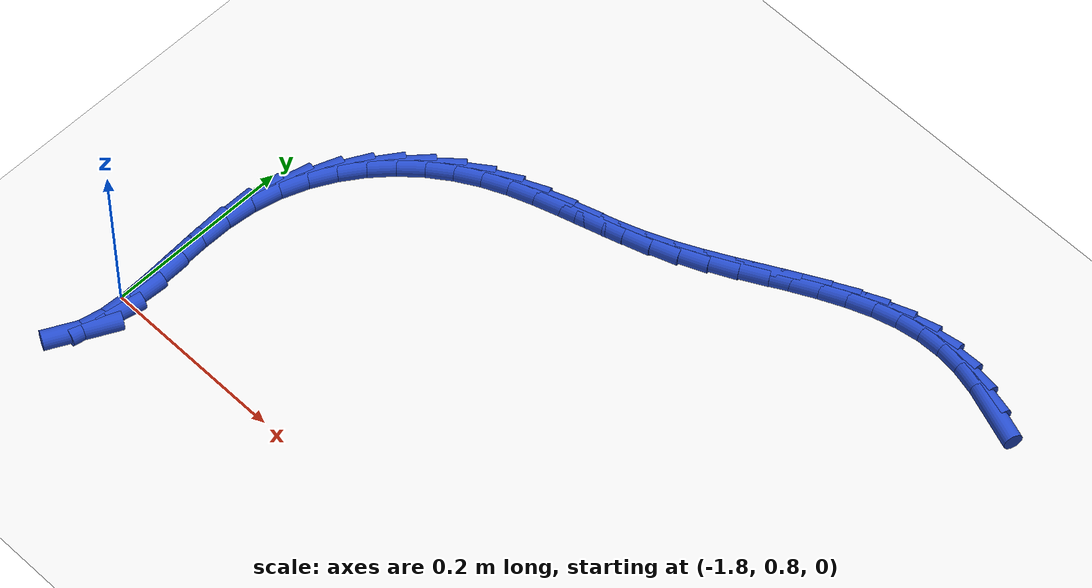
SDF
<sdf version="1.6">
 <world name="default">
  <model name="ground_plane">
   <static>1</static>
   <link name="link">
    <collision name="collision">
     <geometry><plane><normal>0 0 1</normal><size>100 100</size></plane></geometry>
     <surface><friction><ode><mu>100</mu><mu2>50</mu2></ode></friction></surface>
    </collision>
    <visual name="visual">
     <cast_shadows>0</cast_shadows>
     <geometry><plane><normal>0 0 1</normal><size>100 100</size></plane></geometry>
     <material>
      <script><uri>file://media/materials/scripts/gazebo.material</uri><name>Gazebo/WhiteGlow</name></script>
     </material>
    </visual>
   </link>
  </model>
  <model name="line">
   <link name="link_67">
    <pose>-1.1203096751215975 1.2935723844970621 0.01 0 1.57 -0.330985382016928</pose>
    <collision name="collision">
     <geometry><cylinder><radius>0.01</radius><length>0.08</length></cylinder></geometry>
    </collision>
    <visual name="visual">
     <material>
      <script><name>Gazebo/Blue</name><uri>file://media/materials/scripts/gazebo.material</uri></script>
     </material>
     <geometry><cylinder><radius>0.01</radius><length>0.08</length></cylinder></geometry>
    </visual>
   </link>
   <link name="link_68">
    <pose>-1.1465616577272073 1.3025932543069123 0.01 0 1.57 -0.2300452656769726</pose>
    <collision name="collision">
     <geometry><cylinder><radius>0.01</radius><length>0.08</length></cylinder></geometry>
    </collision>
    <visual name="visual">
     <material>
      <script><name>Gazebo/Blue</name><uri>file://media/materials/scripts/gazebo.material</uri></script>
     </material>
     <geometry><cylinder><radius>0.01</radius><length>0.08</length></cylinder></geometry>
    </visual>
   </link>
   <link name="link_69">
    <pose>-1.172833909408002 1.3087459820939127 0.01 0 1.57 -0.11061587663504392</pose>
    <collision name="collision">
     <geometry><cylinder><radius>0.01</radius><length>0.08</length></cylinder></geometry>
    </collision>
    <visual name="visual">
     <material>
      <script><name>Gazebo/Blue</name><uri>file://media/materials/scripts/gazebo.material</uri></script>
     </material>
     <geometry><cylinder><radius>0.01</radius><length>0.08</length></cylinder></geometry>
    </visual>
   </link>
   <link name="link_70">
    <pose>-1.1990649780350098 1.3116594473792682 0.01 0 1.57 0.026565639706230975</pose>
    <collision name="collision">
     <geometry><cylinder><radius>0.01</radius><length>0.08</length></cylinder></geometry>
    </collision>
    <visual name="visual">
     <material>
      <script><name>Gazebo/Blue</name><uri>file://media/materials/scripts/gazebo.material</uri></script>
     </material>
     <geometry><cylinder><radius>0.01</radius><length>0.08</length></cylinder></geometry>
    </visual>
   </link>
   <link name="link_71">
    <pose>-1.2251937201918737 1.3109651572936094 0.01 0 1.57 0.16635604654185257</pose>
    <collision name="collision">
     <geometry><cylinder><radius>0.01</radius><length>0.08</length></cylinder></geometry>
    </collision>
    <visual name="visual">
     <material>
      <script><name>Gazebo/Blue</name><uri>file://media/materials/scripts/gazebo.material</uri></script>
     </material>
     <geometry><cylinder><radius>0.01</radius><length>0.08</length></cylinder></geometry>
    </visual>
   </link>
   <link name="link_72">
    <pose>-1.2511947974078241 1.3065993729918344 0.01 0 1.57 0.2822656990205532</pose>
    <collision name="collision">
     <geometry><cylinder><radius>0.01</radius><length>0.08</length></cylinder></geometry>
    </collision>
    <visual name="visual">
     <material>
      <script><name>Gazebo/Blue</name><uri>file://media/materials/scripts/gazebo.material</uri></script>
     </material>
     <geometry><cylinder><radius>0.01</radius><length>0.08</length></cylinder></geometry>
    </visual>
   </link>
   <link name="link_73">
    <pose>-1.2771115916532596 1.2990832701051274 0.01 0 1.57 0.37133186722553246</pose>
    <collision name="collision">
     <geometry><cylinder><radius>0.01</radius><length>0.08</length></cylinder></geometry>
    </collision>
    <visual name="visual">
     <material>
      <script><name>Gazebo/Blue</name><uri>file://media/materials/scripts/gazebo.material</uri></script>
     </material>
     <geometry><cylinder><radius>0.01</radius><length>0.08</length></cylinder></geometry>
    </visual>
   </link>
   <link name="link_74">
    <pose>-1.3029952674496195 1.2890042654978378 0.01 0 1.57 0.43558105416963316</pose>
    <collision name="collision">
     <geometry><cylinder><radius>0.01</radius><length>0.08</length></cylinder></geometry>
    </collision>
    <visual name="visual">
     <material>
      <script><name>Gazebo/Blue</name><uri>file://media/materials/scripts/gazebo.material</uri></script>
     </material>
     <geometry><cylinder><radius>0.01</radius><length>0.08</length></cylinder></geometry>
    </visual>
   </link>
   <link name="link_75">
    <pose>-1.328896989318343 1.2769497760343136 0.01 0 1.57 0.4776283532183465</pose>
    <collision name="collision">
     <geometry><cylinder><radius>0.01</radius><length>0.08</length></cylinder></geometry>
    </collision>
    <visual name="visual">
     <material>
      <script><name>Gazebo/Blue</name><uri>file://media/materials/scripts/gazebo.material</uri></script>
     </material>
     <geometry><cylinder><radius>0.01</radius><length>0.08</length></cylinder></geometry>
    </visual>
   </link>
   <link name="link_76">
    <pose>-1.354867921780871 1.263507218578904 0.01 0 1.57 0.4996888998927141</pose>
    <collision name="collision">
     <geometry><cylinder><radius>0.01</radius><length>0.08</length></cylinder></geometry>
    </collision>
    <visual name="visual">
     <material>
      <script><name>Gazebo/Blue</name><uri>file://media/materials/scripts/gazebo.material</uri></script>
     </material>
     <geometry><cylinder><radius>0.01</radius><length>0.08</length></cylinder></geometry>
    </visual>
   </link>
   <link name="link_77">
    <pose>-1.3809592293586415 1.2492640099959564 0.01 0 1.57 0.5031903470599809</pose>
    <collision name="collision">
     <geometry><cylinder><radius>0.01</radius><length>0.08</length></cylinder></geometry>
    </collision>
    <visual name="visual">
     <material>
      <script><name>Gazebo/Blue</name><uri>file://media/materials/scripts/gazebo.material</uri></script>
     </material>
     <geometry><cylinder><radius>0.01</radius><length>0.08</length></cylinder></geometry>
    </visual>
   </link>
   <link name="link_78">
    <pose>-1.4072220765730947 1.23480756714982 0.01 0 1.57 0.48868167573067245</pose>
    <collision name="collision">
     <geometry><cylinder><radius>0.01</radius><length>0.08</length></cylinder></geometry>
    </collision>
    <visual name="visual">
     <material>
      <script><name>Gazebo/Blue</name><uri>file://media/materials/scripts/gazebo.material</uri></script>
     </material>
     <geometry><cylinder><radius>0.01</radius><length>0.08</length></cylinder></geometry>
    </visual>
   </link>
   <link name="link_79">
    <pose>-1.4337076279456704 1.2207253069048436 0.01 0 1.57 0.4558731201785721</pose>
    <collision name="collision">
     <geometry><cylinder><radius>0.01</radius><length>0.08</length></cylinder></geometry>
    </collision>
    <visual name="visual">
     <material>
      <script><name>Gazebo/Blue</name><uri>file://media/materials/scripts/gazebo.material</uri></script>
     </material>
     <geometry><cylinder><radius>0.01</radius><length>0.08</length></cylinder></geometry>
    </visual>
   </link>
   <link name="link_80">
    <pose>-1.460467047997808 1.2076046461253758 0.01 0 1.57 0.40379135253094245</pose>
    <collision name="collision">
     <geometry><cylinder><radius>0.01</radius><length>0.08</length></cylinder></geometry>
    </collision>
    <visual name="visual">
     <material>
      <script><name>Gazebo/Blue</name><uri>file://media/materials/scripts/gazebo.material</uri></script>
     </material>
     <geometry><cylinder><radius>0.01</radius><length>0.08</length></cylinder></geometry>
    </visual>
   </link>
   <link name="link_81">
    <pose>-1.4875513674082914 1.1960323428428945 0.01 0 1.57 0.3427464650527939</pose>
    <collision name="collision">
     <geometry><cylinder><radius>0.01</radius><length>0.08</length></cylinder></geometry>
    </collision>
    <visual name="visual">
     <material>
      <script><name>Gazebo/Blue</name><uri>file://media/materials/scripts/gazebo.material</uri></script>
     </material>
     <geometry><cylinder><radius>0.01</radius><length>0.08</length></cylinder></geometry>
    </visual>
   </link>
   <link name="link_82">
    <pose>-1.514943150306915 1.1862581323895869 0.01 0 1.57 0.30345872375006416</pose>
    <collision name="collision">
     <geometry><cylinder><radius>0.01</radius><length>0.08</length></cylinder></geometry>
    </collision>
    <visual name="visual">
     <material>
      <script><name>Gazebo/Blue</name><uri>file://media/materials/scripts/gazebo.material</uri></script>
     </material>
     <geometry><cylinder><radius>0.01</radius><length>0.08</length></cylinder></geometry>
    </visual>
   </link>
   <link name="link_83">
    <pose>-1.542445109784388 1.1776464435712288 0.01 0 1.57 0.29188083728068465</pose>
    <collision name="collision">
     <geometry><cylinder><radius>0.01</radius><length>0.08</length></cylinder></geometry>
    </collision>
    <visual name="visual">
     <material>
      <script><name>Gazebo/Blue</name><uri>file://media/materials/scripts/gazebo.material</uri></script>
     </material>
     <geometry><cylinder><radius>0.01</radius><length>0.08</length></cylinder></geometry>
    </visual>
   </link>
   <link name="link_84">
    <pose>-1.5698307818180703 1.169418082510053 0.01 0 1.57 0.3087128524840878</pose>
    <collision name="collision">
     <geometry><cylinder><radius>0.01</radius><length>0.08</length></cylinder></geometry>
    </collision>
    <visual name="visual">
     <material>
      <script><name>Gazebo/Blue</name><uri>file://media/materials/scripts/gazebo.material</uri></script>
     </material>
     <geometry><cylinder><radius>0.01</radius><length>0.08</length></cylinder></geometry>
    </visual>
   </link>
   <link name="link_85">
    <pose>-1.5968737023853214 1.1607938553282928 0.01 0 1.57 0.3545133535323306</pose>
    <collision name="collision">
     <geometry><cylinder><radius>0.01</radius><length>0.08</length></cylinder></geometry>
    </collision>
    <visual name="visual">
     <material>
      <script><name>Gazebo/Blue</name><uri>file://media/materials/scripts/gazebo.material</uri></script>
     </material>
     <geometry><cylinder><radius>0.01</radius><length>0.08</length></cylinder></geometry>
    </visual>
   </link>
   <link name="link_86">
    <pose>-1.6233474074635001 1.1509945681481804 0.01 0 1.57 0.4292615882512854</pose>
    <collision name="collision">
     <geometry><cylinder><radius>0.01</radius><length>0.08</length></cylinder></geometry>
    </collision>
    <visual name="visual">
     <material>
      <script><name>Gazebo/Blue</name><uri>file://media/materials/scripts/gazebo.material</uri></script>
     </material>
     <geometry><cylinder><radius>0.01</radius><length>0.08</length></cylinder></geometry>
    </visual>
   </link>
   <link name="link_87">
    <pose>-1.6490254330299676 1.1392410270919486 0.01 0 1.57 0.528340043081173</pose>
    <collision name="collision">
     <geometry><cylinder><radius>0.01</radius><length>0.08</length></cylinder></geometry>
    </collision>
    <visual name="visual">
     <material>
      <script><name>Gazebo/Blue</name><uri>file://media/materials/scripts/gazebo.material</uri></script>
     </material>
     <geometry><cylinder><radius>0.01</radius><length>0.08</length></cylinder></geometry>
    </visual>
   </link>
   <link name="link_88">
    <pose>-1.673665212359163 1.1248590500865654 0.01 0 1.57 0.6331327958838043</pose>
    <collision name="collision">
     <geometry><cylinder><radius>0.01</radius><length>0.08</length></cylinder></geometry>
    </collision>
    <visual name="visual">
     <material>
      <script><name>Gazebo/Blue</name><uri>file://media/materials/scripts/gazebo.material</uri></script>
     </material>
     <geometry><cylinder><radius>0.01</radius><length>0.08</length></cylinder></geometry>
    </visual>
   </link>
   <link name="link_89">
    <pose>-1.6969307196166095 1.1077839371904572 0.01 0 1.57 0.7390486124507594</pose>
    <collision name="collision">
     <geometry><cylinder><radius>0.01</radius><length>0.08</length></cylinder></geometry>
    </collision>
    <visual name="visual">
     <material>
      <script><name>Gazebo/Blue</name><uri>file://media/materials/scripts/gazebo.material</uri></script>
     </material>
     <geometry><cylinder><radius>0.01</radius><length>0.08</length></cylinder></geometry>
    </visual>
   </link>
   <link name="link_90">
    <pose>-1.718452295452994 1.0881703253094237 0.01 0 1.57 0.8478512134743477</pose>
    <collision name="collision">
     <geometry><cylinder><radius>0.01</radius><length>0.08</length></cylinder></geometry>
    </collision>
    <visual name="visual">
     <material>
      <script><name>Gazebo/Blue</name><uri>file://media/materials/scripts/gazebo.material</uri></script>
     </material>
     <geometry><cylinder><radius>0.01</radius><length>0.08</length></cylinder></geometry>
    </visual>
   </link>
   <link name="link_91">
    <pose>-1.7378602360849824 1.0661731411202953 0.01 0 1.57 0.9609984574655974</pose>
    <collision name="collision">
     <geometry><cylinder><radius>0.01</radius><length>0.08</length></cylinder></geometry>
    </collision>
    <visual name="visual">
     <material>
      <script><name>Gazebo/Blue</name><uri>file://media/materials/scripts/gazebo.material</uri></script>
     </material>
     <geometry><cylinder><radius>0.01</radius><length>0.08</length></cylinder></geometry>
    </visual>
   </link>
   <link name="link_92">
    <pose>-1.754784837729242 1.041947311299903 0.01 0 1.57 1.0795038826391192</pose>
    <collision name="collision">
     <geometry><cylinder><radius>0.01</radius><length>0.08</length></cylinder></geometry>
    </collision>
    <visual name="visual">
     <material>
      <script><name>Gazebo/Blue</name><uri>file://media/materials/scripts/gazebo.material</uri></script>
     </material>
     <geometry><cylinder><radius>0.01</radius><length>0.08</length></cylinder></geometry>
    </visual>
   </link>
   <link name="link_93">
    <pose>-1.7688563966024378 1.0156477625250764 0.01 0 1.57 1.2037582030051313</pose>
    <collision name="collision">
     <geometry><cylinder><radius>0.01</radius><length>0.08</length></cylinder></geometry>
    </collision>
    <visual name="visual">
     <material>
      <script><name>Gazebo/Blue</name><uri>file://media/materials/scripts/gazebo.material</uri></script>
     </material>
     <geometry><cylinder><radius>0.01</radius><length>0.08</length></cylinder></geometry>
    </visual>
   </link>
   <link name="link_94">
    <pose>-1.7797052089212366 0.9874294214726461 0.01 0 1.57 1.3333400858367856</pose>
    <collision name="collision">
     <geometry><cylinder><radius>0.01</radius><length>0.08</length></cylinder></geometry>
    </collision>
    <visual name="visual">
     <material>
      <script><name>Gazebo/Blue</name><uri>file://media/materials/scripts/gazebo.material</uri></script>
     </material>
     <geometry><cylinder><radius>0.01</radius><length>0.08</length></cylinder></geometry>
    </visual>
   </link>
   <link name="link_95">
    <pose>-1.7869615709023043 0.957447214819442 0.01 0 1.57 1.4645184947091545</pose>
    <collision name="collision">
     <geometry><cylinder><radius>0.01</radius><length>0.08</length></cylinder></geometry>
    </collision>
    <visual name="visual">
     <material>
      <script><name>Gazebo/Blue</name><uri>file://media/materials/scripts/gazebo.material</uri></script>
     </material>
     <geometry><cylinder><radius>0.01</radius><length>0.08</length></cylinder></geometry>
    </visual>
   </link>
   <link name="link_96">
    <pose>-1.7903287877176375 0.9258834385653957 0.01 0 1.57 1.5653355972682237</pose>
    <collision name="collision">
     <geometry><cylinder><radius>0.01</radius><length>0.08</length></cylinder></geometry>
    </collision>
    <visual name="visual">
     <material>
      <script><name>Gazebo/Blue</name><uri>file://media/materials/scripts/gazebo.material</uri></script>
     </material>
     <geometry><cylinder><radius>0.01</radius><length>0.08</length></cylinder></geometry>
    </visual>
   </link>
   <link name="link_97">
    <pose>-1.7905067516748907 0.8932939855546937 0.01 0 1.57 -1.522328261218568</pose>
    <collision name="collision">
     <geometry><cylinder><radius>0.01</radius><length>0.08</length></cylinder></geometry>
    </collision>
    <visual name="visual">
     <material>
      <script><name>Gazebo/Blue</name><uri>file://media/materials/scripts/gazebo.material</uri></script>
     </material>
     <geometry><cylinder><radius>0.01</radius><length>0.08</length></cylinder></geometry>
    </visual>
   </link>
   <link name="link_98">
    <pose>-1.7889162878084492 0.8605050091857585 0.01 0 1.57 -1.5110966289992502</pose>
    <collision name="collision">
     <geometry><cylinder><radius>0.01</radius><length>0.08</length></cylinder></geometry>
    </collision>
    <visual name="visual">
     <material>
      <script><name>Gazebo/Blue</name><uri>file://media/materials/scripts/gazebo.material</uri></script>
     </material>
     <geometry><cylinder><radius>0.01</radius><length>0.08</length></cylinder></geometry>
    </visual>
   </link>
   <link name="link_99">
    <pose>-1.7869942809490285 0.8283486832931723 0.01 0 1.57 -1.5441937716787797</pose>
    <collision name="collision">
     <geometry><cylinder><radius>0.01</radius><length>0.08</length></cylinder></geometry>
    </collision>
    <visual name="visual">
     <material>
      <script><name>Gazebo/Blue</name><uri>file://media/materials/scripts/gazebo.material</uri></script>
     </material>
     <geometry><cylinder><radius>0.01</radius><length>0.08</length></cylinder></geometry>
    </visual>
   </link>
   <link name="link_100">
    <pose>-1.7861776159273433 0.7976571817115173 0.01 0 1.57 1.510099998196074</pose>
    <collision name="collision">
     <geometry><cylinder><radius>0.01</radius><length>0.08</length></cylinder></geometry>
    </collision>
    <visual name="visual">
     <material>
      <script><name>Gazebo/Blue</name><uri>file://media/materials/scripts/gazebo.material</uri></script>
     </material>
     <geometry><cylinder><radius>0.01</radius><length>0.08</length></cylinder></geometry>
    </visual>
   </link>
   <link name="link_101">
    <pose>-1.7879031775741088 0.7692626782753774 0.01 0 1.57 1.3487295528096792</pose>
    <collision name="collision">
     <geometry><cylinder><radius>0.01</radius><length>0.08</length></cylinder></geometry>
    </collision>
    <visual name="visual">
     <material>
      <script><name>Gazebo/Blue</name><uri>file://media/materials/scripts/gazebo.material</uri></script>
     </material>
     <geometry><cylinder><radius>0.01</radius><length>0.08</length></cylinder></geometry>
    </visual>
   </link>
   <link name="link_102">
    <pose>-1.7936078507200413 0.7439973468193344 0.01 0 1.57 1.0897044233699715</pose>
    <collision name="collision">
     <geometry><cylinder><radius>0.01</radius><length>0.08</length></cylinder></geometry>
    </collision>
    <visual name="visual">
     <material>
      <script><name>Gazebo/Blue</name><uri>file://media/materials/scripts/gazebo.material</uri></script>
     </material>
     <geometry><cylinder><radius>0.01</radius><length>0.08</length></cylinder></geometry>
    </visual>
   </link>
  </model>
 </world>
</sdf>
